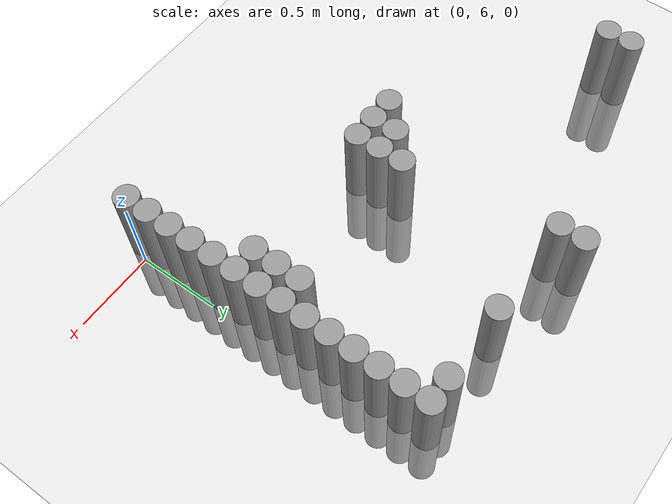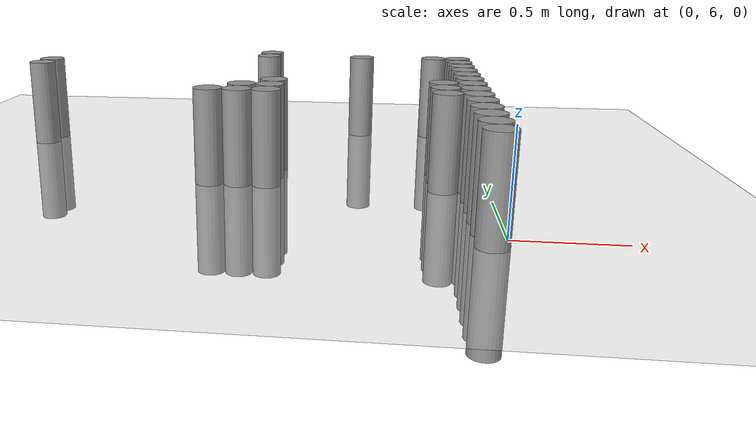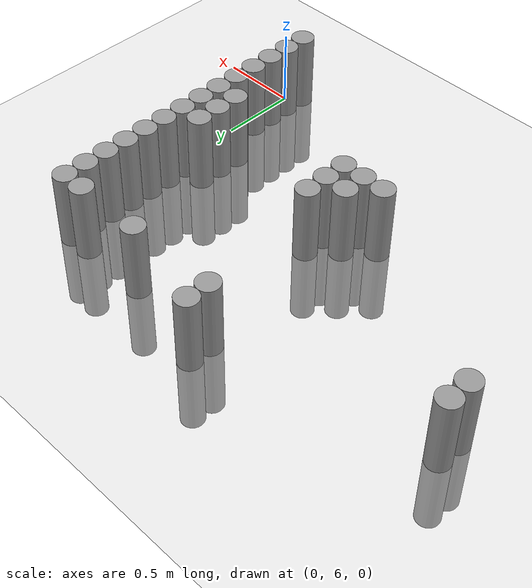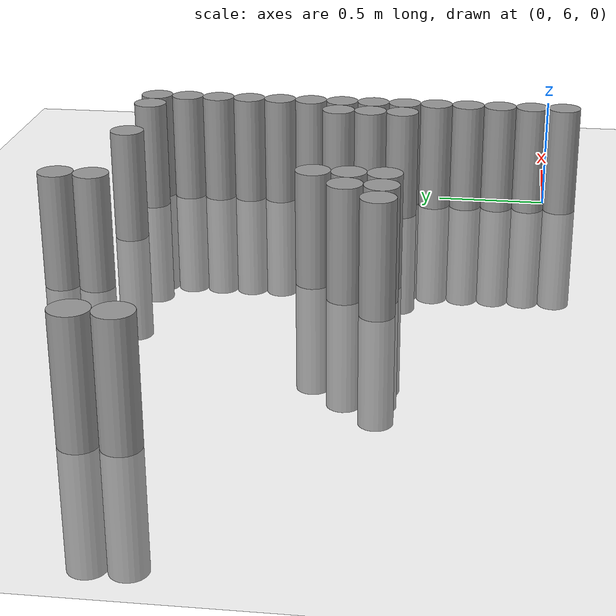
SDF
<sdf version="1.6">
 <world name="default">
  <model name="ground_plane">
   <static>1</static>
   <static>1</static>
   <link name="link">
    <collision name="collision">
     <geometry><plane><normal>0 0 1</normal><size>100 100</size></plane></geometry>
     <surface><friction><ode><mu>100</mu><mu2>50</mu2></ode></friction></surface>
    </collision>
    <visual name="visual">
     <cast_shadows>0</cast_shadows>
     <geometry><plane><normal>0 0 1</normal><size>100 100</size></plane></geometry>
     <material>
      <script><uri>file://media/materials/scripts/gazebo.material</uri><name>Gazebo/Grey</name></script>
     </material>
    </visual>
   </link>
  </model>
  <model name="unit_cylinder_161">
   <static>1</static>
   <pose>-2.625000 7.425000 0.000000 0.000000 0.000000 0.000000</pose>
   <link name="link">
    <inertial>
     <mass>1</mass>
     <inertia><ixx>0.145833</ixx><ixy>0</ixy><ixz>0</ixz><iyy>0.145833</iyy><iyz>0</iyz><izz>0.125</izz></inertia>
    </inertial>
    <collision name="collision">
     <geometry><cylinder><radius>0.075000</radius><length>1</length></cylinder></geometry>
    </collision>
    <visual name="visual">
     <geometry><cylinder><radius>0.075000</radius><length>1</length></cylinder></geometry>
     <material>
      <script><name>Gazebo/Grey</name><uri>file://media/materials/scripts/gazebo.material</uri></script>
     </material>
    </visual>
   </link>
  </model>
  <model name="unit_cylinder_162">
   <static>1</static>
   <pose>-2.625000 7.575000 0.000000 0.000000 0.000000 0.000000</pose>
   <link name="link">
    <inertial>
     <mass>1</mass>
     <inertia><ixx>0.145833</ixx><ixy>0</ixy><ixz>0</ixz><iyy>0.145833</iyy><iyz>0</iyz><izz>0.125</izz></inertia>
    </inertial>
    <collision name="collision">
     <geometry><cylinder><radius>0.075000</radius><length>1</length></cylinder></geometry>
    </collision>
    <visual name="visual">
     <geometry><cylinder><radius>0.075000</radius><length>1</length></cylinder></geometry>
     <material>
      <script><name>Gazebo/Grey</name><uri>file://media/materials/scripts/gazebo.material</uri></script>
     </material>
    </visual>
   </link>
  </model>
  <model name="unit_cylinder_167">
   <static>1</static>
   <pose>-1.425000 6.675000 0.000000 0.000000 0.000000 0.000000</pose>
   <link name="link">
    <inertial>
     <mass>1</mass>
     <inertia><ixx>0.145833</ixx><ixy>0</ixy><ixz>0</ixz><iyy>0.145833</iyy><iyz>0</iyz><izz>0.125</izz></inertia>
    </inertial>
    <collision name="collision">
     <geometry><cylinder><radius>0.075000</radius><length>1</length></cylinder></geometry>
    </collision>
    <visual name="visual">
     <geometry><cylinder><radius>0.075000</radius><length>1</length></cylinder></geometry>
     <material>
      <script><name>Gazebo/Grey</name><uri>file://media/materials/scripts/gazebo.material</uri></script>
     </material>
    </visual>
   </link>
  </model>
  <model name="unit_cylinder_168">
   <static>1</static>
   <pose>-1.275000 6.675000 0.000000 0.000000 0.000000 0.000000</pose>
   <link name="link">
    <inertial>
     <mass>1</mass>
     <inertia><ixx>0.145833</ixx><ixy>0</ixy><ixz>0</ixz><iyy>0.145833</iyy><iyz>0</iyz><izz>0.125</izz></inertia>
    </inertial>
    <collision name="collision">
     <geometry><cylinder><radius>0.075000</radius><length>1</length></cylinder></geometry>
    </collision>
    <visual name="visual">
     <geometry><cylinder><radius>0.075000</radius><length>1</length></cylinder></geometry>
     <material>
      <script><name>Gazebo/Grey</name><uri>file://media/materials/scripts/gazebo.material</uri></script>
     </material>
    </visual>
   </link>
  </model>
  <model name="unit_cylinder_169">
   <static>1</static>
   <pose>-1.275000 6.825000 0.000000 0.000000 0.000000 0.000000</pose>
   <link name="link">
    <inertial>
     <mass>1</mass>
     <inertia><ixx>0.145833</ixx><ixy>0</ixy><ixz>0</ixz><iyy>0.145833</iyy><iyz>0</iyz><izz>0.125</izz></inertia>
    </inertial>
    <collision name="collision">
     <geometry><cylinder><radius>0.075000</radius><length>1</length></cylinder></geometry>
    </collision>
    <visual name="visual">
     <geometry><cylinder><radius>0.075000</radius><length>1</length></cylinder></geometry>
     <material>
      <script><name>Gazebo/Grey</name><uri>file://media/materials/scripts/gazebo.material</uri></script>
     </material>
    </visual>
   </link>
  </model>
  <model name="unit_cylinder_170">
   <static>1</static>
   <pose>-1.275000 7.875000 0.000000 0.000000 0.000000 0.000000</pose>
   <link name="link">
    <inertial>
     <mass>1</mass>
     <inertia><ixx>0.145833</ixx><ixy>0</ixy><ixz>0</ixz><iyy>0.145833</iyy><iyz>0</iyz><izz>0.125</izz></inertia>
    </inertial>
    <collision name="collision">
     <geometry><cylinder><radius>0.075000</radius><length>1</length></cylinder></geometry>
    </collision>
    <visual name="visual">
     <geometry><cylinder><radius>0.075000</radius><length>1</length></cylinder></geometry>
     <material>
      <script><name>Gazebo/Grey</name><uri>file://media/materials/scripts/gazebo.material</uri></script>
     </material>
    </visual>
   </link>
  </model>
  <model name="unit_cylinder_171">
   <static>1</static>
   <pose>-1.275000 8.025000 0.000000 0.000000 0.000000 0.000000</pose>
   <link name="link">
    <inertial>
     <mass>1</mass>
     <inertia><ixx>0.145833</ixx><ixy>0</ixy><ixz>0</ixz><iyy>0.145833</iyy><iyz>0</iyz><izz>0.125</izz></inertia>
    </inertial>
    <collision name="collision">
     <geometry><cylinder><radius>0.075000</radius><length>1</length></cylinder></geometry>
    </collision>
    <visual name="visual">
     <geometry><cylinder><radius>0.075000</radius><length>1</length></cylinder></geometry>
     <material>
      <script><name>Gazebo/Grey</name><uri>file://media/materials/scripts/gazebo.material</uri></script>
     </material>
    </visual>
   </link>
  </model>
  <model name="unit_cylinder_174">
   <static>1</static>
   <pose>-1.125000 6.675000 0.000000 0.000000 0.000000 0.000000</pose>
   <link name="link">
    <inertial>
     <mass>1</mass>
     <inertia><ixx>0.145833</ixx><ixy>0</ixy><ixz>0</ixz><iyy>0.145833</iyy><iyz>0</iyz><izz>0.125</izz></inertia>
    </inertial>
    <collision name="collision">
     <geometry><cylinder><radius>0.075000</radius><length>1</length></cylinder></geometry>
    </collision>
    <visual name="visual">
     <geometry><cylinder><radius>0.075000</radius><length>1</length></cylinder></geometry>
     <material>
      <script><name>Gazebo/Grey</name><uri>file://media/materials/scripts/gazebo.material</uri></script>
     </material>
    </visual>
   </link>
  </model>
  <model name="unit_cylinder_175">
   <static>1</static>
   <pose>-1.125000 6.825000 0.000000 0.000000 0.000000 0.000000</pose>
   <link name="link">
    <inertial>
     <mass>1</mass>
     <inertia><ixx>0.145833</ixx><ixy>0</ixy><ixz>0</ixz><iyy>0.145833</iyy><iyz>0</iyz><izz>0.125</izz></inertia>
    </inertial>
    <collision name="collision">
     <geometry><cylinder><radius>0.075000</radius><length>1</length></cylinder></geometry>
    </collision>
    <visual name="visual">
     <geometry><cylinder><radius>0.075000</radius><length>1</length></cylinder></geometry>
     <material>
      <script><name>Gazebo/Grey</name><uri>file://media/materials/scripts/gazebo.material</uri></script>
     </material>
    </visual>
   </link>
  </model>
  <model name="unit_cylinder_176">
   <static>1</static>
   <pose>-1.125000 6.975000 0.000000 0.000000 0.000000 0.000000</pose>
   <link name="link">
    <inertial>
     <mass>1</mass>
     <inertia><ixx>0.145833</ixx><ixy>0</ixy><ixz>0</ixz><iyy>0.145833</iyy><iyz>0</iyz><izz>0.125</izz></inertia>
    </inertial>
    <collision name="collision">
     <geometry><cylinder><radius>0.075000</radius><length>1</length></cylinder></geometry>
    </collision>
    <visual name="visual">
     <geometry><cylinder><radius>0.075000</radius><length>1</length></cylinder></geometry>
     <material>
      <script><name>Gazebo/Grey</name><uri>file://media/materials/scripts/gazebo.material</uri></script>
     </material>
    </visual>
   </link>
  </model>
  <model name="unit_cylinder_185">
   <static>1</static>
   <pose>-0.675000 7.875000 0.000000 0.000000 0.000000 0.000000</pose>
   <link name="link">
    <inertial>
     <mass>1</mass>
     <inertia><ixx>0.145833</ixx><ixy>0</ixy><ixz>0</ixz><iyy>0.145833</iyy><iyz>0</iyz><izz>0.125</izz></inertia>
    </inertial>
    <collision name="collision">
     <geometry><cylinder><radius>0.075000</radius><length>1</length></cylinder></geometry>
    </collision>
    <visual name="visual">
     <geometry><cylinder><radius>0.075000</radius><length>1</length></cylinder></geometry>
     <material>
      <script><name>Gazebo/Grey</name><uri>file://media/materials/scripts/gazebo.material</uri></script>
     </material>
    </visual>
   </link>
  </model>
  <model name="unit_cylinder_198">
   <static>1</static>
   <pose>-0.225000 6.675000 0.000000 0.000000 0.000000 0.000000</pose>
   <link name="link">
    <inertial>
     <mass>1</mass>
     <inertia><ixx>0.145833</ixx><ixy>0</ixy><ixz>0</ixz><iyy>0.145833</iyy><iyz>0</iyz><izz>0.125</izz></inertia>
    </inertial>
    <collision name="collision">
     <geometry><cylinder><radius>0.075000</radius><length>1</length></cylinder></geometry>
    </collision>
    <visual name="visual">
     <geometry><cylinder><radius>0.075000</radius><length>1</length></cylinder></geometry>
     <material>
      <script><name>Gazebo/Grey</name><uri>file://media/materials/scripts/gazebo.material</uri></script>
     </material>
    </visual>
   </link>
  </model>
  <model name="unit_cylinder_199">
   <static>1</static>
   <pose>-0.225000 6.825000 0.000000 0.000000 0.000000 0.000000</pose>
   <link name="link">
    <inertial>
     <mass>1</mass>
     <inertia><ixx>0.145833</ixx><ixy>0</ixy><ixz>0</ixz><iyy>0.145833</iyy><iyz>0</iyz><izz>0.125</izz></inertia>
    </inertial>
    <collision name="collision">
     <geometry><cylinder><radius>0.075000</radius><length>1</length></cylinder></geometry>
    </collision>
    <visual name="visual">
     <geometry><cylinder><radius>0.075000</radius><length>1</length></cylinder></geometry>
     <material>
      <script><name>Gazebo/Grey</name><uri>file://media/materials/scripts/gazebo.material</uri></script>
     </material>
    </visual>
   </link>
  </model>
  <model name="unit_cylinder_200">
   <static>1</static>
   <pose>-0.225000 6.975000 0.000000 0.000000 0.000000 0.000000</pose>
   <link name="link">
    <inertial>
     <mass>1</mass>
     <inertia><ixx>0.145833</ixx><ixy>0</ixy><ixz>0</ixz><iyy>0.145833</iyy><iyz>0</iyz><izz>0.125</izz></inertia>
    </inertial>
    <collision name="collision">
     <geometry><cylinder><radius>0.075000</radius><length>1</length></cylinder></geometry>
    </collision>
    <visual name="visual">
     <geometry><cylinder><radius>0.075000</radius><length>1</length></cylinder></geometry>
     <material>
      <script><name>Gazebo/Grey</name><uri>file://media/materials/scripts/gazebo.material</uri></script>
     </material>
    </visual>
   </link>
  </model>
  <model name="unit_cylinder_201">
   <static>1</static>
   <pose>-0.225000 7.875000 0.000000 0.000000 0.000000 0.000000</pose>
   <link name="link">
    <inertial>
     <mass>1</mass>
     <inertia><ixx>0.145833</ixx><ixy>0</ixy><ixz>0</ixz><iyy>0.145833</iyy><iyz>0</iyz><izz>0.125</izz></inertia>
    </inertial>
    <collision name="collision">
     <geometry><cylinder><radius>0.075000</radius><length>1</length></cylinder></geometry>
    </collision>
    <visual name="visual">
     <geometry><cylinder><radius>0.075000</radius><length>1</length></cylinder></geometry>
     <material>
      <script><name>Gazebo/Grey</name><uri>file://media/materials/scripts/gazebo.material</uri></script>
     </material>
    </visual>
   </link>
  </model>
  <model name="unit_cylinder_209">
   <static>1</static>
   <pose>-0.075000 5.925000 0.000000 0.000000 0.000000 0.000000</pose>
   <link name="link">
    <inertial>
     <mass>1</mass>
     <inertia><ixx>0.145833</ixx><ixy>0</ixy><ixz>0</ixz><iyy>0.145833</iyy><iyz>0</iyz><izz>0.125</izz></inertia>
    </inertial>
    <collision name="collision">
     <geometry><cylinder><radius>0.075000</radius><length>1</length></cylinder></geometry>
    </collision>
    <visual name="visual">
     <geometry><cylinder><radius>0.075000</radius><length>1</length></cylinder></geometry>
     <material>
      <script><name>Gazebo/Grey</name><uri>file://media/materials/scripts/gazebo.material</uri></script>
     </material>
    </visual>
   </link>
  </model>
  <model name="unit_cylinder_210">
   <static>1</static>
   <pose>-0.075000 6.075000 0.000000 0.000000 0.000000 0.000000</pose>
   <link name="link">
    <inertial>
     <mass>1</mass>
     <inertia><ixx>0.145833</ixx><ixy>0</ixy><ixz>0</ixz><iyy>0.145833</iyy><iyz>0</iyz><izz>0.125</izz></inertia>
    </inertial>
    <collision name="collision">
     <geometry><cylinder><radius>0.075000</radius><length>1</length></cylinder></geometry>
    </collision>
    <visual name="visual">
     <geometry><cylinder><radius>0.075000</radius><length>1</length></cylinder></geometry>
     <material>
      <script><name>Gazebo/Grey</name><uri>file://media/materials/scripts/gazebo.material</uri></script>
     </material>
    </visual>
   </link>
  </model>
  <model name="unit_cylinder_211">
   <static>1</static>
   <pose>-0.075000 6.225000 0.000000 0.000000 0.000000 0.000000</pose>
   <link name="link">
    <inertial>
     <mass>1</mass>
     <inertia><ixx>0.145833</ixx><ixy>0</ixy><ixz>0</ixz><iyy>0.145833</iyy><iyz>0</iyz><izz>0.125</izz></inertia>
    </inertial>
    <collision name="collision">
     <geometry><cylinder><radius>0.075000</radius><length>1</length></cylinder></geometry>
    </collision>
    <visual name="visual">
     <geometry><cylinder><radius>0.075000</radius><length>1</length></cylinder></geometry>
     <material>
      <script><name>Gazebo/Grey</name><uri>file://media/materials/scripts/gazebo.material</uri></script>
     </material>
    </visual>
   </link>
  </model>
  <model name="unit_cylinder_212">
   <static>1</static>
   <pose>-0.075000 6.375000 0.000000 0.000000 0.000000 0.000000</pose>
   <link name="link">
    <inertial>
     <mass>1</mass>
     <inertia><ixx>0.145833</ixx><ixy>0</ixy><ixz>0</ixz><iyy>0.145833</iyy><iyz>0</iyz><izz>0.125</izz></inertia>
    </inertial>
    <collision name="collision">
     <geometry><cylinder><radius>0.075000</radius><length>1</length></cylinder></geometry>
    </collision>
    <visual name="visual">
     <geometry><cylinder><radius>0.075000</radius><length>1</length></cylinder></geometry>
     <material>
      <script><name>Gazebo/Grey</name><uri>file://media/materials/scripts/gazebo.material</uri></script>
     </material>
    </visual>
   </link>
  </model>
  <model name="unit_cylinder_213">
   <static>1</static>
   <pose>-0.075000 6.525000 0.000000 0.000000 0.000000 0.000000</pose>
   <link name="link">
    <inertial>
     <mass>1</mass>
     <inertia><ixx>0.145833</ixx><ixy>0</ixy><ixz>0</ixz><iyy>0.145833</iyy><iyz>0</iyz><izz>0.125</izz></inertia>
    </inertial>
    <collision name="collision">
     <geometry><cylinder><radius>0.075000</radius><length>1</length></cylinder></geometry>
    </collision>
    <visual name="visual">
     <geometry><cylinder><radius>0.075000</radius><length>1</length></cylinder></geometry>
     <material>
      <script><name>Gazebo/Grey</name><uri>file://media/materials/scripts/gazebo.material</uri></script>
     </material>
    </visual>
   </link>
  </model>
  <model name="unit_cylinder_214">
   <static>1</static>
   <pose>-0.075000 6.675000 0.000000 0.000000 0.000000 0.000000</pose>
   <link name="link">
    <inertial>
     <mass>1</mass>
     <inertia><ixx>0.145833</ixx><ixy>0</ixy><ixz>0</ixz><iyy>0.145833</iyy><iyz>0</iyz><izz>0.125</izz></inertia>
    </inertial>
    <collision name="collision">
     <geometry><cylinder><radius>0.075000</radius><length>1</length></cylinder></geometry>
    </collision>
    <visual name="visual">
     <geometry><cylinder><radius>0.075000</radius><length>1</length></cylinder></geometry>
     <material>
      <script><name>Gazebo/Grey</name><uri>file://media/materials/scripts/gazebo.material</uri></script>
     </material>
    </visual>
   </link>
  </model>
  <model name="unit_cylinder_215">
   <static>1</static>
   <pose>-0.075000 6.825000 0.000000 0.000000 0.000000 0.000000</pose>
   <link name="link">
    <inertial>
     <mass>1</mass>
     <inertia><ixx>0.145833</ixx><ixy>0</ixy><ixz>0</ixz><iyy>0.145833</iyy><iyz>0</iyz><izz>0.125</izz></inertia>
    </inertial>
    <collision name="collision">
     <geometry><cylinder><radius>0.075000</radius><length>1</length></cylinder></geometry>
    </collision>
    <visual name="visual">
     <geometry><cylinder><radius>0.075000</radius><length>1</length></cylinder></geometry>
     <material>
      <script><name>Gazebo/Grey</name><uri>file://media/materials/scripts/gazebo.material</uri></script>
     </material>
    </visual>
   </link>
  </model>
  <model name="unit_cylinder_216">
   <static>1</static>
   <pose>-0.075000 6.975000 0.000000 0.000000 0.000000 0.000000</pose>
   <link name="link">
    <inertial>
     <mass>1</mass>
     <inertia><ixx>0.145833</ixx><ixy>0</ixy><ixz>0</ixz><iyy>0.145833</iyy><iyz>0</iyz><izz>0.125</izz></inertia>
    </inertial>
    <collision name="collision">
     <geometry><cylinder><radius>0.075000</radius><length>1</length></cylinder></geometry>
    </collision>
    <visual name="visual">
     <geometry><cylinder><radius>0.075000</radius><length>1</length></cylinder></geometry>
     <material>
      <script><name>Gazebo/Grey</name><uri>file://media/materials/scripts/gazebo.material</uri></script>
     </material>
    </visual>
   </link>
  </model>
  <model name="unit_cylinder_217">
   <static>1</static>
   <pose>-0.075000 7.125000 0.000000 0.000000 0.000000 0.000000</pose>
   <link name="link">
    <inertial>
     <mass>1</mass>
     <inertia><ixx>0.145833</ixx><ixy>0</ixy><ixz>0</ixz><iyy>0.145833</iyy><iyz>0</iyz><izz>0.125</izz></inertia>
    </inertial>
    <collision name="collision">
     <geometry><cylinder><radius>0.075000</radius><length>1</length></cylinder></geometry>
    </collision>
    <visual name="visual">
     <geometry><cylinder><radius>0.075000</radius><length>1</length></cylinder></geometry>
     <material>
      <script><name>Gazebo/Grey</name><uri>file://media/materials/scripts/gazebo.material</uri></script>
     </material>
    </visual>
   </link>
  </model>
  <model name="unit_cylinder_218">
   <static>1</static>
   <pose>-0.075000 7.275000 0.000000 0.000000 0.000000 0.000000</pose>
   <link name="link">
    <inertial>
     <mass>1</mass>
     <inertia><ixx>0.145833</ixx><ixy>0</ixy><ixz>0</ixz><iyy>0.145833</iyy><iyz>0</iyz><izz>0.125</izz></inertia>
    </inertial>
    <collision name="collision">
     <geometry><cylinder><radius>0.075000</radius><length>1</length></cylinder></geometry>
    </collision>
    <visual name="visual">
     <geometry><cylinder><radius>0.075000</radius><length>1</length></cylinder></geometry>
     <material>
      <script><name>Gazebo/Grey</name><uri>file://media/materials/scripts/gazebo.material</uri></script>
     </material>
    </visual>
   </link>
  </model>
  <model name="unit_cylinder_219">
   <static>1</static>
   <pose>-0.075000 7.425000 0.000000 0.000000 0.000000 0.000000</pose>
   <link name="link">
    <inertial>
     <mass>1</mass>
     <inertia><ixx>0.145833</ixx><ixy>0</ixy><ixz>0</ixz><iyy>0.145833</iyy><iyz>0</iyz><izz>0.125</izz></inertia>
    </inertial>
    <collision name="collision">
     <geometry><cylinder><radius>0.075000</radius><length>1</length></cylinder></geometry>
    </collision>
    <visual name="visual">
     <geometry><cylinder><radius>0.075000</radius><length>1</length></cylinder></geometry>
     <material>
      <script><name>Gazebo/Grey</name><uri>file://media/materials/scripts/gazebo.material</uri></script>
     </material>
    </visual>
   </link>
  </model>
  <model name="unit_cylinder_220">
   <static>1</static>
   <pose>-0.075000 7.575000 0.000000 0.000000 0.000000 0.000000</pose>
   <link name="link">
    <inertial>
     <mass>1</mass>
     <inertia><ixx>0.145833</ixx><ixy>0</ixy><ixz>0</ixz><iyy>0.145833</iyy><iyz>0</iyz><izz>0.125</izz></inertia>
    </inertial>
    <collision name="collision">
     <geometry><cylinder><radius>0.075000</radius><length>1</length></cylinder></geometry>
    </collision>
    <visual name="visual">
     <geometry><cylinder><radius>0.075000</radius><length>1</length></cylinder></geometry>
     <material>
      <script><name>Gazebo/Grey</name><uri>file://media/materials/scripts/gazebo.material</uri></script>
     </material>
    </visual>
   </link>
  </model>
  <model name="unit_cylinder_221">
   <static>1</static>
   <pose>-0.075000 7.725000 0.000000 0.000000 0.000000 0.000000</pose>
   <link name="link">
    <inertial>
     <mass>1</mass>
     <inertia><ixx>0.145833</ixx><ixy>0</ixy><ixz>0</ixz><iyy>0.145833</iyy><iyz>0</iyz><izz>0.125</izz></inertia>
    </inertial>
    <collision name="collision">
     <geometry><cylinder><radius>0.075000</radius><length>1</length></cylinder></geometry>
    </collision>
    <visual name="visual">
     <geometry><cylinder><radius>0.075000</radius><length>1</length></cylinder></geometry>
     <material>
      <script><name>Gazebo/Grey</name><uri>file://media/materials/scripts/gazebo.material</uri></script>
     </material>
    </visual>
   </link>
  </model>
  <model name="unit_cylinder_222">
   <static>1</static>
   <pose>-0.075000 7.875000 0.000000 0.000000 0.000000 0.000000</pose>
   <link name="link">
    <inertial>
     <mass>1</mass>
     <inertia><ixx>0.145833</ixx><ixy>0</ixy><ixz>0</ixz><iyy>0.145833</iyy><iyz>0</iyz><izz>0.125</izz></inertia>
    </inertial>
    <collision name="collision">
     <geometry><cylinder><radius>0.075000</radius><length>1</length></cylinder></geometry>
    </collision>
    <visual name="visual">
     <geometry><cylinder><radius>0.075000</radius><length>1</length></cylinder></geometry>
     <material>
      <script><name>Gazebo/Grey</name><uri>file://media/materials/scripts/gazebo.material</uri></script>
     </material>
    </visual>
   </link>
  </model>
 </world>
</sdf>
